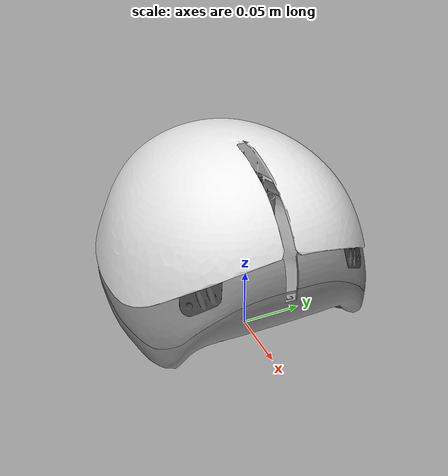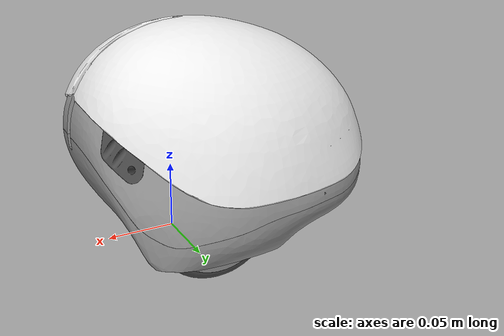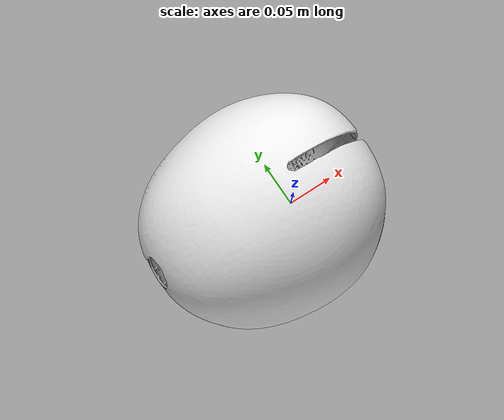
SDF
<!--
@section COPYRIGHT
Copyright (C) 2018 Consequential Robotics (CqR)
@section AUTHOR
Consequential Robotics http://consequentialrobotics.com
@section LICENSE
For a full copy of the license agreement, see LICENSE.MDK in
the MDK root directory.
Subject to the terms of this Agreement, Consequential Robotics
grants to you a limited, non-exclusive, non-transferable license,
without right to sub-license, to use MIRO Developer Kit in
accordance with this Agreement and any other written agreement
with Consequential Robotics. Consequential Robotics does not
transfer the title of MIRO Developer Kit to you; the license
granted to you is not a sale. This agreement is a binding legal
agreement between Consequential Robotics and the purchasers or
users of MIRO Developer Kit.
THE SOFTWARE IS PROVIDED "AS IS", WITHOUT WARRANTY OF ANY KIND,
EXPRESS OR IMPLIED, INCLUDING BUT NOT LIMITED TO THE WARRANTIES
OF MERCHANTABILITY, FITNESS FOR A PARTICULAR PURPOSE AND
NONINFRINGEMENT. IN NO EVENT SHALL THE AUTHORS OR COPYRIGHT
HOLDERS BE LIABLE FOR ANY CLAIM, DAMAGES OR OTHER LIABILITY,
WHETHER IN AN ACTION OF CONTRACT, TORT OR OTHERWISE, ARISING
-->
<?xml version="1.0"?>
<sdf version="1.5">
  <model name="miro_body">
    <link name="body">
      <inertial>
        <pose>-0.060 0 0.050 0 0 0</pose>
        <mass>1.570796</mass>
        <inertia>
          <ixx>0.00523599</ixx>
          <ixy>0.0</ixy>
          <ixz>0.0</ixz>
          <iyy>0.00523599</iyy>
          <iyz>0.0</iyz>
          <izz>0.00785398</izz>
        </inertia>
      </inertial>
      <visual name="visual_valance">
        <pose>0 0 0 0 0 0</pose>
        <geometry>
          <mesh>
            <uri>model://miro_model/meshes/valance.dae</uri>
          </mesh>
        </geometry>
        <material>
          <script>
            <uri>file://media/materials/scripts/gazebo.material</uri>
            <name>Gazebo/Grey</name>
          </script>
        </material>
      </visual>
      <collision name="collision_valance">
        <pose>0 0 0 0 0 0</pose>
        <geometry>
          <mesh>
            <uri>model://miro_model/meshes/valance_collision.dae</uri>
          </mesh>
        </geometry>
        <surface>
          <friction>
            <ode>
              <mu>0.1</mu>
              <mu2>0.1</mu2>
            </ode>
          </friction>
        </surface>
      </collision>
      <visual name="visual_skirt_lh">
        <pose>0 0 0 0 0 0</pose>
        <geometry>
          <mesh>
            <uri>model://miro_model/meshes/skirt_lh.dae</uri>
          </mesh>
        </geometry>
        <material>
          <script>
            <uri>file://media/materials/scripts/gazebo.material</uri>
            <name>Gazebo/Grey</name>
          </script>
        </material>
      </visual>
      <collision name="collision_skirt_lh">
        <pose>0 0 0 0 0 0</pose>
        <geometry>
          <mesh>
            <uri>model://miro_model/meshes/skirt_lh_collision.dae</uri>
          </mesh>
        </geometry>
        <surface>
          <friction>
            <ode>
              <mu>0.1</mu>
              <mu2>0.1</mu2>
            </ode>
          </friction>
        </surface>
      </collision>
      <visual name="visual_skirt_rh">
        <pose>0 0 0 0 0 0</pose>
        <geometry>
          <mesh>
            <uri>model://miro_model/meshes/skirt_rh.dae</uri>
          </mesh>
        </geometry>
        <material>
          <script>
            <uri>file://media/materials/scripts/gazebo.material</uri>
            <name>Gazebo/Grey</name>
          </script>
        </material>
      </visual>
      <collision name="collision_skirt_rh">
        <pose>0 0 0 0 0 0</pose>
        <geometry>
          <mesh>
            <uri>model://miro_model/meshes/skirt_rh_collision.dae</uri>
          </mesh>
        </geometry>
        <surface>
          <friction>
            <ode>
              <mu>0.1</mu>
              <mu2>0.1</mu2>
            </ode>
          </friction>
        </surface>
      </collision>
      <visual name="visual_cliff_sensor_L_asm">
        <pose>0 0 0 0 0 0</pose>
        <geometry>
          <mesh>
            <uri>model://miro_model/meshes/cliff_sensor_L_asm.dae</uri>
          </mesh>
        </geometry>
        <material>
          <script>
            <uri>file://media/materials/scripts/gazebo.material</uri>
            <name>Gazebo/DarkGrey</name>
          </script>
        </material>
      </visual>
      <visual name="visual_cliff_sensor_R_asm">
        <pose>0 0 0 0 0 0</pose>
        <geometry>
          <mesh>
            <uri>model://miro_model/meshes/cliff_sensor_R_asm.dae</uri>
          </mesh>
        </geometry>
        <material>
          <script>
            <uri>file://media/materials/scripts/gazebo.material</uri>
            <name>Gazebo/DarkGrey</name>
          </script>
        </material>
      </visual>
      <visual name="visual_light_sensor_holder_asm_L">
        <pose>0 0 0 0 0 0</pose>
        <geometry>
          <mesh>
            <uri>model://miro_model/meshes/light_sensor_holder_asm_L.dae</uri>
          </mesh>
        </geometry>
        <material>
          <script>
            <uri>file://media/materials/scripts/gazebo.material</uri>
            <name>Gazebo/DarkGrey</name>
          </script>
        </material>
      </visual>
      <visual name="visual_light_sensor_holder_asm_R">
        <pose>0 0 0 0 0 0</pose>
        <geometry>
          <mesh>
            <uri>model://miro_model/meshes/light_sensor_holder_asm_R.dae</uri>
          </mesh>
        </geometry>
        <material>
          <script>
            <uri>file://media/materials/scripts/gazebo.material</uri>
            <name>Gazebo/DarkGrey</name>
          </script>
        </material>
      </visual>
      <visual name="visual_neck_mount">
        <pose>0 0 0 0 0 0</pose>
        <geometry>
          <mesh>
            <uri>model://miro_model/meshes/neck_mount.dae</uri>
          </mesh>
        </geometry>
        <material>
          <script>
            <uri>file://media/materials/scripts/gazebo.material</uri>
            <name>Gazebo/Red</name>
          </script>
        </material>
      </visual>
      <visual name="visual_body_shell">
        <pose>0 0 0 0 0 0</pose>
        <geometry>
          <mesh>
            <uri>model://miro_model/meshes/body_shell.dae</uri>
          </mesh>
        </geometry>
        <material>
          <script>
            <uri>file://media/materials/scripts/gazebo.material</uri>
            <name>Gazebo/White</name>
          </script>
        </material>
      </visual>
      <collision name="collision_body_shell">
        <pose>0 0 0 0 0 0</pose>
        <geometry>
          <mesh>
            <uri>model://miro_model/meshes/body_shell_collision.dae</uri>
          </mesh>
        </geometry>
        <surface>
          <friction>
            <ode>
              <mu>0.1</mu>
              <mu2>0.1</mu2>
            </ode>
          </friction>
        </surface>
      </collision>
      <visual name="visual_slider">
        <pose>0 0 0 0 0 0</pose>
        <geometry>
          <mesh>
            <uri>model://miro_model/meshes/slider.dae</uri>
          </mesh>
        </geometry>
        <material>
          <script>
            <uri>file://media/materials/scripts/gazebo.material</uri>
            <name>Gazebo/DarkGrey</name>
          </script>
        </material>
      </visual>
      <collision name="collision_slider">
        <pose>0 0 0 0 0 0</pose>
        <geometry>
          <mesh>
            <uri>model://miro_model/meshes/slider_collision.dae</uri>
          </mesh>
        </geometry>
        <surface>
          <friction>
            <ode>
              <mu>0.01</mu>
              <mu2>0.01</mu2>
            </ode>
          </friction>
        </surface>
      </collision>
      <visual name="visual_battery_box">
        <pose>0 0 0 0 0 0</pose>
        <geometry>
          <mesh>
            <uri>model://miro_model/meshes/battery_box.dae</uri>
          </mesh>
        </geometry>
        <material>
          <script>
            <uri>file://media/materials/scripts/gazebo.material</uri>
            <name>Gazebo/Grey</name>
          </script>
        </material>
      </visual>
      <visual name="visual_battery_box_cover">
        <pose>0 0 0 0 0 0</pose>
        <geometry>
          <mesh>
            <uri>model://miro_model/meshes/battery_box_cover.dae</uri>
          </mesh>
        </geometry>
        <material>
          <script>
            <uri>file://media/materials/scripts/gazebo.material</uri>
            <name>Gazebo/Grey</name>
          </script>
        </material>
      </visual>
      <!-- imu -->
      <sensor name="acc_body" type="imu">
        <pose>0 0 0 0 0 0</pose>
        <always_on>1</always_on>
        <update_rate>50</update_rate>
        <visualize>false</visualize>
      </sensor>
      <!-- cliff -->
      <sensor name="cliff_l" type="sonar">
        <pose>0.062 0.055 0.085 0 -0.52 0</pose>
        <always_on>1</always_on>
        <update_rate>50</update_rate>
        <visualize>false</visualize>
        <sonar>
          <min>0.0</min>
          <max>0.5</max>
          <radius>0.025</radius>
        </sonar>
      </sensor>
      <!-- cliff -->
      <sensor name="cliff_r" type="sonar">
        <pose>0.062 -0.055 0.085 0 -0.52 0</pose>
        <always_on>1</always_on>
        <update_rate>50</update_rate>
        <visualize>false</visualize>
        <sonar>
          <min>0.0</min>
          <max>0.5</max>
          <radius>0.025</radius>
        </sonar>
      </sensor>
      <!-- light -->
      <sensor name="lightfl" type="camera">
        <pose>0.055 0.065 0.08 0 -0.26 0.52</pose>
        <camera>
          <horizontal_fov>1.57</horizontal_fov>
          <image>
            <width>16</width>
            <height>12</height>
          </image>
          <clip>
            <near>0.01</near>
            <far>2</far>
          </clip>
        </camera>
        <always_on>1</always_on>
        <update_rate>50</update_rate>
        <visualize>false</visualize>
      </sensor>
      <!-- light -->
      <sensor name="lightfr" type="camera">
        <pose>0.055 -0.065 0.08 0 -0.26 -0.52</pose>
        <camera>
          <horizontal_fov>1.57</horizontal_fov>
          <image>
            <width>16</width>
            <height>12</height>
          </image>
          <clip>
            <near>0.01</near>
            <far>2</far>
          </clip>
        </camera>
        <always_on>1</always_on>
        <update_rate>50</update_rate>
        <visualize>false</visualize>
      </sensor>
      <!-- light -->
      <sensor name="lightrl" type="camera">
        <pose>-0.125 0.072 0.06 0 -0.26 2.61</pose>
        <camera>
          <horizontal_fov>1.57</horizontal_fov>
          <image>
            <width>16</width>
            <height>12</height>
          </image>
          <clip>
            <near>0.01</near>
            <far>5</far>
          </clip>
        </camera>
        <always_on>1</always_on>
        <update_rate>50</update_rate>
        <visualize>false</visualize>
      </sensor>
      <!-- light -->
      <sensor name="lightrr" type="camera">
        <pose>-0.125 -0.072 0.06 0 -0.26 -2.61</pose>
        <camera>
          <horizontal_fov>1.57</horizontal_fov>
          <image>
            <width>16</width>
            <height>12</height>
          </image>
          <clip>
            <near>0.01</near>
            <far>5</far>
          </clip>
        </camera>
        <always_on>1</always_on>
        <update_rate>50</update_rate>
        <visualize>false</visualize>
      </sensor>
    </link>
    <link name="wheel_lh">
      <inertial>
        <pose>0.000630 0.077790 0.044838 0 0 0</pose>
        <mass>0.134041</mass>
        <inertia>
          <ixx>0.00014298</ixx>
          <ixy>0.0</ixy>
          <ixz>0.0</ixz>
          <iyy>0.00014298</iyy>
          <iyz>0.0</iyz>
          <izz>0.00014298</izz>
        </inertia>
      </inertial>
      <visual name="visual_wheel_tyre_lh">
        <pose>0 0 0 0 0 0</pose>
        <geometry>
          <mesh>
            <uri>model://miro_model/meshes/wheel_tyre_lh.dae</uri>
          </mesh>
        </geometry>
        <material>
          <script>
            <uri>file://media/materials/scripts/gazebo.material</uri>
            <name>Gazebo/DarkGrey</name>
          </script>
        </material>
      </visual>
      <collision name="collision_wheel_tyre_lh">
        <pose>0 0 0 0 0 0</pose>
        <geometry>
          <mesh>
            <uri>model://miro_model/meshes/wheel_tyre_lh_collision.dae</uri>
          </mesh>
        </geometry>
        <surface>
          <friction>
            <ode>
              <mu>1</mu>
              <mu2>1</mu2>
            </ode>
          </friction>
        </surface>
      </collision>
      <visual name="visual_wheel_rim_lh">
        <pose>0 0 0 0 0 0</pose>
        <geometry>
          <mesh>
            <uri>model://miro_model/meshes/wheel_rim_lh.dae</uri>
          </mesh>
        </geometry>
        <material>
          <script>
            <uri>file://media/materials/scripts/gazebo.material</uri>
            <name>Gazebo/Grey</name>
          </script>
        </material>
      </visual>
    </link>
    <link name="wheel_rh">
      <inertial>
        <pose>0.000630 -0.077790 0.044838 0 0 0</pose>
        <mass>0.134041</mass>
        <inertia>
          <ixx>0.00014298</ixx>
          <ixy>0.0</ixy>
          <ixz>0.0</ixz>
          <iyy>0.00014298</iyy>
          <iyz>0.0</iyz>
          <izz>0.00014298</izz>
        </inertia>
      </inertial>
      <visual name="visual_wheel_tyre_rh">
        <pose>0 0 0 0 0 0</pose>
        <geometry>
          <mesh>
            <uri>model://miro_model/meshes/wheel_tyre_rh.dae</uri>
          </mesh>
        </geometry>
        <material>
          <script>
            <uri>file://media/materials/scripts/gazebo.material</uri>
            <name>Gazebo/DarkGrey</name>
          </script>
        </material>
      </visual>
      <collision name="collision_wheel_tyre_rh">
        <pose>0 0 0 0 0 0</pose>
        <geometry>
          <mesh>
            <uri>model://miro_model/meshes/wheel_tyre_rh_collision.dae</uri>
          </mesh>
        </geometry>
        <surface>
          <friction>
            <ode>
              <mu>1</mu>
              <mu2>1</mu2>
            </ode>
          </friction>
        </surface>
      </collision>
      <visual name="visual_wheel_rim_rh">
        <pose>0 0 0 0 0 0</pose>
        <geometry>
          <mesh>
            <uri>model://miro_model/meshes/wheel_rim_rh.dae</uri>
          </mesh>
        </geometry>
        <material>
          <script>
            <uri>file://media/materials/scripts/gazebo.material</uri>
            <name>Gazebo/Grey</name>
          </script>
        </material>
      </visual>
    </link>
    <joint type="revolute" name="body_wheel_lh">
      <pose>0.000630 0.077790 0.044838 0 0 0</pose>
      <parent>body</parent>
      <child>wheel_lh</child>
      <axis>
        <xyz>0 0.999657 0.026185</xyz>
        <dynamics>
          <friction>0.1</friction>
          <damping>0.1</damping>
        </dynamics>
      </axis>
    </joint>
    <joint type="revolute" name="body_wheel_rh">
      <pose>0.000630 -0.077790 0.044838 0 0 0</pose>
      <parent>body</parent>
      <child>wheel_rh</child>
      <axis>
        <xyz>0 0.999657 -0.026185</xyz>
        <dynamics>
          <friction>0.1</friction>
          <damping>0.1</damping>
        </dynamics>
      </axis>
    </joint>
  </model>
</sdf>
